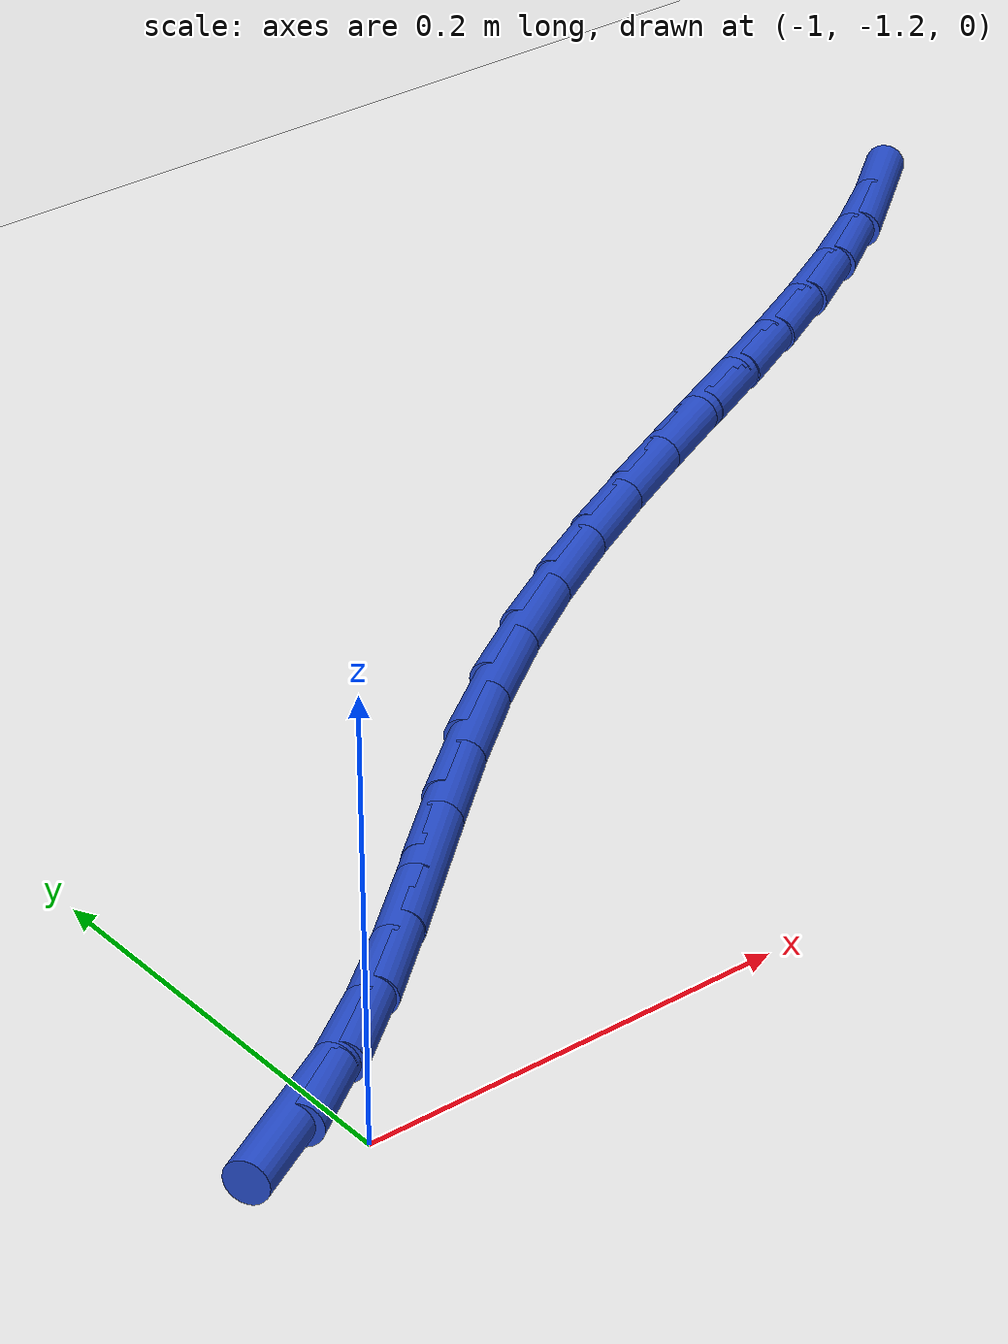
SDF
<sdf version="1.6">
 <world name="default">
  <model name="ground_plane">
   <static>1</static>
   <link name="link">
    <collision name="collision">
     <geometry><plane><normal>0 0 1</normal><size>100 100</size></plane></geometry>
     <surface><friction><ode><mu>100</mu><mu2>50</mu2></ode></friction></surface>
    </collision>
    <visual name="visual">
     <cast_shadows>0</cast_shadows>
     <geometry><plane><normal>0 0 1</normal><size>100 100</size></plane></geometry>
     <material>
      <script><uri>file://media/materials/scripts/gazebo.material</uri><name>Gazebo/WhiteGlow</name></script>
     </material>
    </visual>
   </link>
  </model>
  <model name="line">
   <link name="link_122">
    <pose>-1.022334698764922 -1.1810968562856876 0.01 0 1.57 0.5098993725778191</pose>
    <collision name="collision">
     <geometry><cylinder><radius>0.01</radius><length>0.08</length></cylinder></geometry>
    </collision>
    <visual name="visual">
     <material>
      <script><name>Gazebo/Blue</name><uri>file://media/materials/scripts/gazebo.material</uri></script>
     </material>
     <geometry><cylinder><radius>0.01</radius><length>0.08</length></cylinder></geometry>
    </visual>
   </link>
   <link name="link_123">
    <pose>-0.987943208452232 -1.1618642197063578 0.01 0 1.57 0.6091094157489412</pose>
    <collision name="collision">
     <geometry><cylinder><radius>0.01</radius><length>0.08</length></cylinder></geometry>
    </collision>
    <visual name="visual">
     <material>
      <script><name>Gazebo/Blue</name><uri>file://media/materials/scripts/gazebo.material</uri></script>
     </material>
     <geometry><cylinder><radius>0.01</radius><length>0.08</length></cylinder></geometry>
    </visual>
   </link>
   <link name="link_124">
    <pose>-0.9533307629870844 -1.137718783245682 0.01 0 1.57 0.6725541877662093</pose>
    <collision name="collision">
     <geometry><cylinder><radius>0.01</radius><length>0.08</length></cylinder></geometry>
    </collision>
    <visual name="visual">
     <material>
      <script><name>Gazebo/Blue</name><uri>file://media/materials/scripts/gazebo.material</uri></script>
     </material>
     <geometry><cylinder><radius>0.01</radius><length>0.08</length></cylinder></geometry>
    </visual>
   </link>
   <link name="link_125">
    <pose>-0.9184075085957092 -1.1099052056858372 0.01 0 1.57 0.707963593932918</pose>
    <collision name="collision">
     <geometry><cylinder><radius>0.01</radius><length>0.08</length></cylinder></geometry>
    </collision>
    <visual name="visual">
     <material>
      <script><name>Gazebo/Blue</name><uri>file://media/materials/scripts/gazebo.material</uri></script>
     </material>
     <geometry><cylinder><radius>0.01</radius><length>0.08</length></cylinder></geometry>
    </visual>
   </link>
   <link name="link_126">
    <pose>-0.8830835915043357 -1.0796681458089992 0.01 0 1.57 0.7200661747229807</pose>
    <collision name="collision">
     <geometry><cylinder><radius>0.01</radius><length>0.08</length></cylinder></geometry>
    </collision>
    <visual name="visual">
     <material>
      <script><name>Gazebo/Blue</name><uri>file://media/materials/scripts/gazebo.material</uri></script>
     </material>
     <geometry><cylinder><radius>0.01</radius><length>0.08</length></cylinder></geometry>
    </visual>
   </link>
   <link name="link_127">
    <pose>-0.8472691579391955 -1.0482522623973454 0.01 0 1.57 0.711068358930715</pose>
    <collision name="collision">
     <geometry><cylinder><radius>0.01</radius><length>0.08</length></cylinder></geometry>
    </collision>
    <visual name="visual">
     <material>
      <script><name>Gazebo/Blue</name><uri>file://media/materials/scripts/gazebo.material</uri></script>
     </material>
     <geometry><cylinder><radius>0.01</radius><length>0.08</length></cylinder></geometry>
    </visual>
   </link>
   <link name="link_128">
    <pose>-0.8108743541265184 -1.0169022142330524 0.01 0 1.57 0.6810837864946677</pose>
    <collision name="collision">
     <geometry><cylinder><radius>0.01</radius><length>0.08</length></cylinder></geometry>
    </collision>
    <visual name="visual">
     <material>
      <script><name>Gazebo/Blue</name><uri>file://media/materials/scripts/gazebo.material</uri></script>
     </material>
     <geometry><cylinder><radius>0.01</radius><length>0.08</length></cylinder></geometry>
    </visual>
   </link>
   <link name="link_129">
    <pose>-0.7738093262925344 -0.9868626600982968 0.01 0 1.57 0.6301569351206556</pose>
    <collision name="collision">
     <geometry><cylinder><radius>0.01</radius><length>0.08</length></cylinder></geometry>
    </collision>
    <visual name="visual">
     <material>
      <script><name>Gazebo/Blue</name><uri>file://media/materials/scripts/gazebo.material</uri></script>
     </material>
     <geometry><cylinder><radius>0.01</radius><length>0.08</length></cylinder></geometry>
    </visual>
   </link>
   <link name="link_130">
    <pose>-0.7360000210721355 -0.9592862497566604 0.01 0 1.57 0.5755593094161727</pose>
    <collision name="collision">
     <geometry><cylinder><radius>0.01</radius><length>0.08</length></cylinder></geometry>
    </collision>
    <visual name="visual">
     <material>
      <script><name>Gazebo/Blue</name><uri>file://media/materials/scripts/gazebo.material</uri></script>
     </material>
     <geometry><cylinder><radius>0.01</radius><length>0.08</length></cylinder></geometry>
    </visual>
   </link>
   <link name="link_131">
    <pose>-0.6975427389561352 -0.9343336275475477 0.01 0 1.57 0.529579589667347</pose>
    <collision name="collision">
     <geometry><cylinder><radius>0.01</radius><length>0.08</length></cylinder></geometry>
    </collision>
    <visual name="visual">
     <material>
      <script><name>Gazebo/Blue</name><uri>file://media/materials/scripts/gazebo.material</uri></script>
     </material>
     <geometry><cylinder><radius>0.01</radius><length>0.08</length></cylinder></geometry>
    </visual>
   </link>
   <link name="link_132">
    <pose>-0.6586376725121544 -0.9115604529500915 0.01 0 1.57 0.4932537148978593</pose>
    <collision name="collision">
     <geometry><cylinder><radius>0.01</radius><length>0.08</length></cylinder></geometry>
    </collision>
    <visual name="visual">
     <material>
      <script><name>Gazebo/Blue</name><uri>file://media/materials/scripts/gazebo.material</uri></script>
     </material>
     <geometry><cylinder><radius>0.01</radius><length>0.08</length></cylinder></geometry>
    </visual>
   </link>
   <link name="link_133">
    <pose>-0.6194864946631586 -0.8905137650307873 0.01 0 1.57 0.4672202539167909</pose>
    <collision name="collision">
     <geometry><cylinder><radius>0.01</radius><length>0.08</length></cylinder></geometry>
    </collision>
    <visual name="visual">
     <material>
      <script><name>Gazebo/Blue</name><uri>file://media/materials/scripts/gazebo.material</uri></script>
     </material>
     <geometry><cylinder><radius>0.01</radius><length>0.08</length></cylinder></geometry>
    </visual>
   </link>
   <link name="link_134">
    <pose>-0.5802908783321129 -0.870740602856131 0.01 0 1.57 0.4519693331285645</pose>
    <collision name="collision">
     <geometry><cylinder><radius>0.01</radius><length>0.08</length></cylinder></geometry>
    </collision>
    <visual name="visual">
     <material>
      <script><name>Gazebo/Blue</name><uri>file://media/materials/scripts/gazebo.material</uri></script>
     </material>
     <geometry><cylinder><radius>0.01</radius><length>0.08</length></cylinder></geometry>
    </visual>
   </link>
   <link name="link_135">
    <pose>-0.5412524964419827 -0.8517880054926182 0.01 0 1.57 0.4479158912251932</pose>
    <collision name="collision">
     <geometry><cylinder><radius>0.01</radius><length>0.08</length></cylinder></geometry>
    </collision>
    <visual name="visual">
     <material>
      <script><name>Gazebo/Blue</name><uri>file://media/materials/scripts/gazebo.material</uri></script>
     </material>
     <geometry><cylinder><radius>0.01</radius><length>0.08</length></cylinder></geometry>
    </visual>
   </link>
   <link name="link_136">
    <pose>-0.502573021915733 -0.8332030120067444 0.01 0 1.57 0.4554483573332498</pose>
    <collision name="collision">
     <geometry><cylinder><radius>0.01</radius><length>0.08</length></cylinder></geometry>
    </collision>
    <visual name="visual">
     <material>
      <script><name>Gazebo/Blue</name><uri>file://media/materials/scripts/gazebo.material</uri></script>
     </material>
     <geometry><cylinder><radius>0.01</radius><length>0.08</length></cylinder></geometry>
    </visual>
   </link>
   <link name="link_137">
    <pose>-0.46445412767633093 -0.8145326614650065 0.01 0 1.57 0.4749405063006675</pose>
    <collision name="collision">
     <geometry><cylinder><radius>0.01</radius><length>0.08</length></cylinder></geometry>
    </collision>
    <visual name="visual">
     <material>
      <script><name>Gazebo/Blue</name><uri>file://media/materials/scripts/gazebo.material</uri></script>
     </material>
     <geometry><cylinder><radius>0.01</radius><length>0.08</length></cylinder></geometry>
    </visual>
   </link>
   <link name="link_138">
    <pose>-0.42709748664674074 -0.7953239929338993 0.01 0 1.57 0.5067156938694031</pose>
    <collision name="collision">
     <geometry><cylinder><radius>0.01</radius><length>0.08</length></cylinder></geometry>
    </collision>
    <visual name="visual">
     <material>
      <script><name>Gazebo/Blue</name><uri>file://media/materials/scripts/gazebo.material</uri></script>
     </material>
     <geometry><cylinder><radius>0.01</radius><length>0.08</length></cylinder></geometry>
    </visual>
   </link>
   <link name="link_139">
    <pose>-0.3907047717499284 -0.7751240454799191 0.01 0 1.57 0.5509538457649882</pose>
    <collision name="collision">
     <geometry><cylinder><radius>0.01</radius><length>0.08</length></cylinder></geometry>
    </collision>
    <visual name="visual">
     <material>
      <script><name>Gazebo/Blue</name><uri>file://media/materials/scripts/gazebo.material</uri></script>
     </material>
     <geometry><cylinder><radius>0.01</radius><length>0.08</length></cylinder></geometry>
    </visual>
   </link>
   <link name="link_140">
    <pose>-0.35547765590885927 -0.7534798581695618 0.01 0 1.57 0.6075375290273748</pose>
    <collision name="collision">
     <geometry><cylinder><radius>0.01</radius><length>0.08</length></cylinder></geometry>
    </collision>
    <visual name="visual">
     <material>
      <script><name>Gazebo/Blue</name><uri>file://media/materials/scripts/gazebo.material</uri></script>
     </material>
     <geometry><cylinder><radius>0.01</radius><length>0.08</length></cylinder></geometry>
    </visual>
   </link>
   <link name="link_141">
    <pose>-0.3216178120464983 -0.7299384700693224 0.01 0 1.57 0.6758468418060587</pose>
    <collision name="collision">
     <geometry><cylinder><radius>0.01</radius><length>0.08</length></cylinder></geometry>
    </collision>
    <visual name="visual">
     <material>
      <script><name>Gazebo/Blue</name><uri>file://media/materials/scripts/gazebo.material</uri></script>
     </material>
     <geometry><cylinder><radius>0.01</radius><length>0.08</length></cylinder></geometry>
    </visual>
   </link>
  </model>
 </world>
</sdf>
